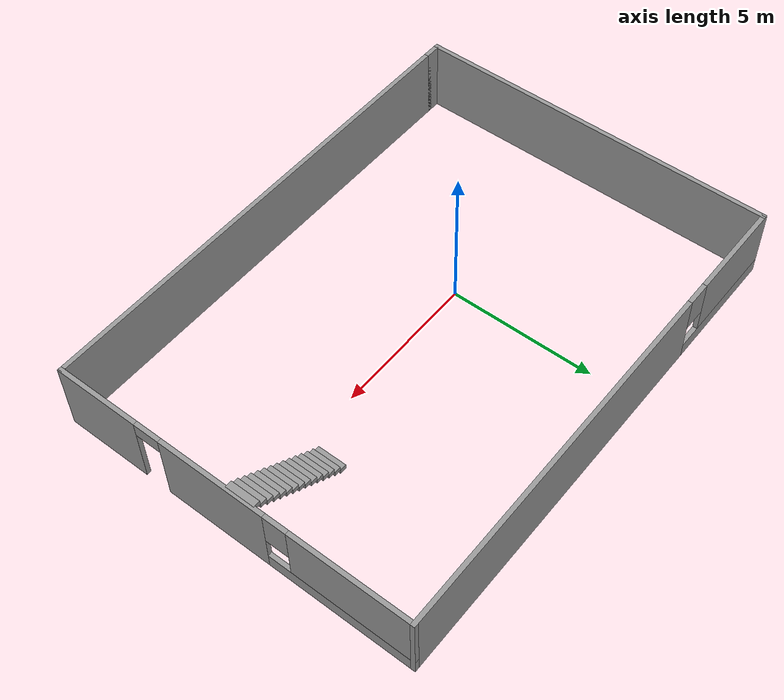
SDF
<?xml version='1.0'?>
<sdf version='1.7'>
  <model name='sim_world'>
    <pose>2.01947 0.477387 0 0 -0 0</pose>
    <link name='Stairs_1'>
      <visual name='Stairs_1_Visual_0'>
        <pose>5.01672 0.428993 0.083333 0 -0 1.5708</pose>
        <geometry>
          <box>
            <size>1 0.233333 0.166667</size>
          </box>
        </geometry>
        <material>
          <script>
            <uri>file://media/materials/scripts/gazebo.material</uri>
            <name>Gazebo/Grey</name>
          </script>
          <ambient>1 1 1 1</ambient>
        </material>
        <meta>
          <layer>0</layer>
        </meta>
      </visual>
      <collision name='Stairs_1_Collision_0'>
        <geometry>
          <box>
            <size>1 0.233333 0.166667</size>
          </box>
        </geometry>
        <pose>5.01672 0.428993 0.083333 0 -0 1.5708</pose>
      </collision>
      <visual name='Stairs_1_Visual_1'>
        <pose>5.25005 0.428993 0.25 0 -0 1.5708</pose>
        <geometry>
          <box>
            <size>1 0.233333 0.166667</size>
          </box>
        </geometry>
        <material>
          <script>
            <uri>file://media/materials/scripts/gazebo.material</uri>
            <name>Gazebo/Grey</name>
          </script>
          <ambient>1 1 1 1</ambient>
        </material>
        <meta>
          <layer>0</layer>
        </meta>
      </visual>
      <collision name='Stairs_1_Collision_1'>
        <geometry>
          <box>
            <size>1 0.233333 0.166667</size>
          </box>
        </geometry>
        <pose>5.25005 0.428993 0.25 0 -0 1.5708</pose>
      </collision>
      <visual name='Stairs_1_Visual_2'>
        <pose>5.48339 0.428993 0.416667 0 -0 1.5708</pose>
        <geometry>
          <box>
            <size>1 0.233333 0.166667</size>
          </box>
        </geometry>
        <material>
          <script>
            <uri>file://media/materials/scripts/gazebo.material</uri>
            <name>Gazebo/Grey</name>
          </script>
          <ambient>1 1 1 1</ambient>
        </material>
        <meta>
          <layer>0</layer>
        </meta>
      </visual>
      <collision name='Stairs_1_Collision_2'>
        <geometry>
          <box>
            <size>1 0.233333 0.166667</size>
          </box>
        </geometry>
        <pose>5.48339 0.428993 0.416667 0 -0 1.5708</pose>
      </collision>
      <visual name='Stairs_1_Visual_3'>
        <pose>5.71672 0.428993 0.583333 0 -0 1.5708</pose>
        <geometry>
          <box>
            <size>1 0.233333 0.166667</size>
          </box>
        </geometry>
        <material>
          <script>
            <uri>file://media/materials/scripts/gazebo.material</uri>
            <name>Gazebo/Grey</name>
          </script>
          <ambient>1 1 1 1</ambient>
        </material>
        <meta>
          <layer>0</layer>
        </meta>
      </visual>
      <collision name='Stairs_1_Collision_3'>
        <geometry>
          <box>
            <size>1 0.233333 0.166667</size>
          </box>
        </geometry>
        <pose>5.71672 0.428993 0.583333 0 -0 1.5708</pose>
      </collision>
      <visual name='Stairs_1_Visual_4'>
        <pose>5.95005 0.428993 0.75 0 -0 1.5708</pose>
        <geometry>
          <box>
            <size>1 0.233333 0.166667</size>
          </box>
        </geometry>
        <material>
          <script>
            <uri>file://media/materials/scripts/gazebo.material</uri>
            <name>Gazebo/Grey</name>
          </script>
          <ambient>1 1 1 1</ambient>
        </material>
        <meta>
          <layer>0</layer>
        </meta>
      </visual>
      <collision name='Stairs_1_Collision_4'>
        <geometry>
          <box>
            <size>1 0.233333 0.166667</size>
          </box>
        </geometry>
        <pose>5.95005 0.428993 0.75 0 -0 1.5708</pose>
      </collision>
      <visual name='Stairs_1_Visual_5'>
        <pose>6.18339 0.428993 0.916667 0 -0 1.5708</pose>
        <geometry>
          <box>
            <size>1 0.233333 0.166667</size>
          </box>
        </geometry>
        <material>
          <script>
            <uri>file://media/materials/scripts/gazebo.material</uri>
            <name>Gazebo/Grey</name>
          </script>
          <ambient>1 1 1 1</ambient>
        </material>
        <meta>
          <layer>0</layer>
        </meta>
      </visual>
      <collision name='Stairs_1_Collision_5'>
        <geometry>
          <box>
            <size>1 0.233333 0.166667</size>
          </box>
        </geometry>
        <pose>6.18339 0.428993 0.916667 0 -0 1.5708</pose>
      </collision>
      <visual name='Stairs_1_Visual_6'>
        <pose>6.41672 0.428993 1.08333 0 -0 1.5708</pose>
        <geometry>
          <box>
            <size>1 0.233333 0.166667</size>
          </box>
        </geometry>
        <material>
          <script>
            <uri>file://media/materials/scripts/gazebo.material</uri>
            <name>Gazebo/Grey</name>
          </script>
          <ambient>1 1 1 1</ambient>
        </material>
        <meta>
          <layer>0</layer>
        </meta>
      </visual>
      <collision name='Stairs_1_Collision_6'>
        <geometry>
          <box>
            <size>1 0.233333 0.166667</size>
          </box>
        </geometry>
        <pose>6.41672 0.428993 1.08333 0 -0 1.5708</pose>
      </collision>
      <visual name='Stairs_1_Visual_7'>
        <pose>6.65005 0.428993 1.25 0 -0 1.5708</pose>
        <geometry>
          <box>
            <size>1 0.233333 0.166667</size>
          </box>
        </geometry>
        <material>
          <script>
            <uri>file://media/materials/scripts/gazebo.material</uri>
            <name>Gazebo/Grey</name>
          </script>
          <ambient>1 1 1 1</ambient>
        </material>
        <meta>
          <layer>0</layer>
        </meta>
      </visual>
      <collision name='Stairs_1_Collision_7'>
        <geometry>
          <box>
            <size>1 0.233333 0.166667</size>
          </box>
        </geometry>
        <pose>6.65005 0.428993 1.25 0 -0 1.5708</pose>
      </collision>
      <visual name='Stairs_1_Visual_8'>
        <pose>6.88339 0.428993 1.41667 0 -0 1.5708</pose>
        <geometry>
          <box>
            <size>1 0.233333 0.166667</size>
          </box>
        </geometry>
        <material>
          <script>
            <uri>file://media/materials/scripts/gazebo.material</uri>
            <name>Gazebo/Grey</name>
          </script>
          <ambient>1 1 1 1</ambient>
        </material>
        <meta>
          <layer>0</layer>
        </meta>
      </visual>
      <collision name='Stairs_1_Collision_8'>
        <geometry>
          <box>
            <size>1 0.233333 0.166667</size>
          </box>
        </geometry>
        <pose>6.88339 0.428993 1.41667 0 -0 1.5708</pose>
      </collision>
      <visual name='Stairs_1_Visual_9'>
        <pose>7.11672 0.428993 1.58333 0 -0 1.5708</pose>
        <geometry>
          <box>
            <size>1 0.233333 0.166667</size>
          </box>
        </geometry>
        <material>
          <script>
            <uri>file://media/materials/scripts/gazebo.material</uri>
            <name>Gazebo/Grey</name>
          </script>
          <ambient>1 1 1 1</ambient>
        </material>
        <meta>
          <layer>0</layer>
        </meta>
      </visual>
      <collision name='Stairs_1_Collision_9'>
        <geometry>
          <box>
            <size>1 0.233333 0.166667</size>
          </box>
        </geometry>
        <pose>7.11672 0.428993 1.58333 0 -0 1.5708</pose>
      </collision>
      <visual name='Stairs_1_Visual_10'>
        <pose>7.35005 0.428993 1.75 0 -0 1.5708</pose>
        <geometry>
          <box>
            <size>1 0.233333 0.166667</size>
          </box>
        </geometry>
        <material>
          <script>
            <uri>file://media/materials/scripts/gazebo.material</uri>
            <name>Gazebo/Grey</name>
          </script>
          <ambient>1 1 1 1</ambient>
        </material>
        <meta>
          <layer>0</layer>
        </meta>
      </visual>
      <collision name='Stairs_1_Collision_10'>
        <geometry>
          <box>
            <size>1 0.233333 0.166667</size>
          </box>
        </geometry>
        <pose>7.35005 0.428993 1.75 0 -0 1.5708</pose>
      </collision>
      <visual name='Stairs_1_Visual_11'>
        <pose>7.58338 0.428993 1.91667 0 -0 1.5708</pose>
        <geometry>
          <box>
            <size>1 0.233333 0.166667</size>
          </box>
        </geometry>
        <material>
          <script>
            <uri>file://media/materials/scripts/gazebo.material</uri>
            <name>Gazebo/Grey</name>
          </script>
          <ambient>1 1 1 1</ambient>
        </material>
        <meta>
          <layer>0</layer>
        </meta>
      </visual>
      <collision name='Stairs_1_Collision_11'>
        <geometry>
          <box>
            <size>1 0.233333 0.166667</size>
          </box>
        </geometry>
        <pose>7.58338 0.428993 1.91667 0 -0 1.5708</pose>
      </collision>
      <visual name='Stairs_1_Visual_12'>
        <pose>7.81672 0.428993 2.08333 0 -0 1.5708</pose>
        <geometry>
          <box>
            <size>1 0.233333 0.166667</size>
          </box>
        </geometry>
        <material>
          <script>
            <uri>file://media/materials/scripts/gazebo.material</uri>
            <name>Gazebo/Grey</name>
          </script>
          <ambient>1 1 1 1</ambient>
        </material>
        <meta>
          <layer>0</layer>
        </meta>
      </visual>
      <collision name='Stairs_1_Collision_12'>
        <geometry>
          <box>
            <size>1 0.233333 0.166667</size>
          </box>
        </geometry>
        <pose>7.81672 0.428993 2.08333 0 -0 1.5708</pose>
      </collision>
      <visual name='Stairs_1_Visual_13'>
        <pose>8.05005 0.428993 2.25 0 -0 1.5708</pose>
        <geometry>
          <box>
            <size>1 0.233333 0.166667</size>
          </box>
        </geometry>
        <material>
          <script>
            <uri>file://media/materials/scripts/gazebo.material</uri>
            <name>Gazebo/Grey</name>
          </script>
          <ambient>1 1 1 1</ambient>
        </material>
        <meta>
          <layer>0</layer>
        </meta>
      </visual>
      <collision name='Stairs_1_Collision_13'>
        <geometry>
          <box>
            <size>1 0.233333 0.166667</size>
          </box>
        </geometry>
        <pose>8.05005 0.428993 2.25 0 -0 1.5708</pose>
      </collision>
      <visual name='Stairs_1_Visual_14'>
        <pose>8.28339 0.428993 2.41667 0 -0 1.5708</pose>
        <geometry>
          <box>
            <size>1 0.233333 0.166667</size>
          </box>
        </geometry>
        <material>
          <script>
            <uri>file://media/materials/scripts/gazebo.material</uri>
            <name>Gazebo/Grey</name>
          </script>
          <ambient>1 1 1 1</ambient>
        </material>
        <meta>
          <layer>0</layer>
        </meta>
      </visual>
      <collision name='Stairs_1_Collision_14'>
        <geometry>
          <box>
            <size>1 0.233333 0.166667</size>
          </box>
        </geometry>
        <pose>8.28339 0.428993 2.41667 0 -0 1.5708</pose>
      </collision>
    </link>
    <link name='Wall_5'>
      <collision name='Wall_5_Collision'>
        <geometry>
          <box>
            <size>16.5 0.15 2.5</size>
          </box>
        </geometry>
        <pose>0 0 1.25 0 -0 0</pose>
      </collision>
      <visual name='Wall_5_Visual'>
        <pose>0 0 1.25 0 -0 0</pose>
        <geometry>
          <box>
            <size>16.5 0.15 2.5</size>
          </box>
        </geometry>
        <material>
          <script>
            <uri>file://media/materials/scripts/gazebo.material</uri>
            <name>Gazebo/Grey</name>
          </script>
          <ambient>1 1 1 1</ambient>
        </material>
        <meta>
          <layer>0</layer>
        </meta>
      </visual>
      <pose>0.25 -6.175 0 0 -0 0</pose>
    </link>
    <link name='Wall_6'>
      <pose>8.425 -0 0 0 -0 1.5708</pose>
      <visual name='Wall_6_Visual_0'>
        <pose>-4.78268 0 1.25 0 -0 0</pose>
        <geometry>
          <box>
            <size>2.93465 0.15 2.5</size>
          </box>
        </geometry>
        <material>
          <script>
            <uri>file://media/materials/scripts/gazebo.material</uri>
            <name>Gazebo/Grey</name>
          </script>
          <ambient>1 1 1 1</ambient>
        </material>
        <meta>
          <layer>0</layer>
        </meta>
      </visual>
      <collision name='Wall_6_Collision_0'>
        <geometry>
          <box>
            <size>2.93465 0.15 2.5</size>
          </box>
        </geometry>
        <pose>-4.78268 0 1.25 0 -0 0</pose>
      </collision>
      <visual name='Wall_6_Visual_1'>
        <pose>-0.566035 0 1.25 0 -0 0</pose>
        <geometry>
          <box>
            <size>3.69863 0.15 2.5</size>
          </box>
        </geometry>
        <material>
          <script>
            <uri>file://media/materials/scripts/gazebo.material</uri>
            <name>Gazebo/Grey</name>
          </script>
          <ambient>1 1 1 1</ambient>
        </material>
        <meta>
          <layer>0</layer>
        </meta>
      </visual>
      <collision name='Wall_6_Collision_1'>
        <geometry>
          <box>
            <size>3.69863 0.15 2.5</size>
          </box>
        </geometry>
        <pose>-0.566035 0 1.25 0 -0 0</pose>
      </collision>
      <visual name='Wall_6_Visual_2'>
        <pose>3.76664 0 0.25 0 -0 0</pose>
        <geometry>
          <box>
            <size>4.96672 0.15 0.5</size>
          </box>
        </geometry>
        <material>
          <script>
            <uri>file://media/materials/scripts/gazebo.material</uri>
            <name>Gazebo/Grey</name>
          </script>
          <ambient>1 1 1 1</ambient>
        </material>
        <meta>
          <layer>0</layer>
        </meta>
      </visual>
      <collision name='Wall_6_Collision_2'>
        <geometry>
          <box>
            <size>4.96672 0.15 0.5</size>
          </box>
        </geometry>
        <pose>3.76664 0 0.25 0 -0 0</pose>
      </collision>
      <visual name='Wall_6_Visual_3'>
        <pose>4.16664 0 1.5 0 -0 0</pose>
        <geometry>
          <box>
            <size>4.16672 0.15 2</size>
          </box>
        </geometry>
        <material>
          <script>
            <uri>file://media/materials/scripts/gazebo.material</uri>
            <name>Gazebo/Grey</name>
          </script>
          <ambient>1 1 1 1</ambient>
        </material>
        <meta>
          <layer>0</layer>
        </meta>
      </visual>
      <collision name='Wall_6_Collision_3'>
        <geometry>
          <box>
            <size>4.16672 0.15 2</size>
          </box>
        </geometry>
        <pose>4.16664 0 1.5 0 -0 0</pose>
      </collision>
      <visual name='Wall_6_Visual_4'>
        <pose>1.68328 0 1.9 0 -0 0</pose>
        <geometry>
          <box>
            <size>0.8 0.15 1.2</size>
          </box>
        </geometry>
        <material>
          <script>
            <uri>file://media/materials/scripts/gazebo.material</uri>
            <name>Gazebo/Grey</name>
          </script>
          <ambient>1 1 1 1</ambient>
        </material>
        <meta>
          <layer>0</layer>
        </meta>
      </visual>
      <collision name='Wall_6_Collision_4'>
        <geometry>
          <box>
            <size>0.8 0.15 1.2</size>
          </box>
        </geometry>
        <pose>1.68328 0 1.9 0 -0 0</pose>
      </collision>
      <visual name='Wall_6_Visual_5'>
        <pose>-2.86535 0 2.25 0 -0 0</pose>
        <geometry>
          <box>
            <size>0.9 0.15 0.5</size>
          </box>
        </geometry>
        <material>
          <script>
            <uri>file://media/materials/scripts/gazebo.material</uri>
            <name>Gazebo/Grey</name>
          </script>
          <ambient>1 1 1 1</ambient>
        </material>
        <meta>
          <layer>0</layer>
        </meta>
      </visual>
      <collision name='Wall_6_Collision_5'>
        <geometry>
          <box>
            <size>0.9 0.15 0.5</size>
          </box>
        </geometry>
        <pose>-2.86535 0 2.25 0 -0 0</pose>
      </collision>
    </link>
    <link name='Wall_7'>
      <pose>-0 6.175 0 0 -0 3.14159</pose>
      <visual name='Wall_7_Visual_0'>
        <pose>-2.12595 0 1.25 0 -0 0</pose>
        <geometry>
          <box>
            <size>12.7481 0.15 2.5</size>
          </box>
        </geometry>
        <material>
          <script>
            <uri>file://media/materials/scripts/gazebo.material</uri>
            <name>Gazebo/Grey</name>
          </script>
          <ambient>1 1 1 1</ambient>
        </material>
        <meta>
          <layer>0</layer>
        </meta>
      </visual>
      <collision name='Wall_7_Collision_0'>
        <geometry>
          <box>
            <size>12.7481 0.15 2.5</size>
          </box>
        </geometry>
        <pose>-2.12595 0 1.25 0 -0 0</pose>
      </collision>
      <visual name='Wall_7_Visual_1'>
        <pose>6.37405 0 0.25 0 -0 0</pose>
        <geometry>
          <box>
            <size>4.2519 0.15 0.5</size>
          </box>
        </geometry>
        <material>
          <script>
            <uri>file://media/materials/scripts/gazebo.material</uri>
            <name>Gazebo/Grey</name>
          </script>
          <ambient>1 1 1 1</ambient>
        </material>
        <meta>
          <layer>0</layer>
        </meta>
      </visual>
      <collision name='Wall_7_Collision_1'>
        <geometry>
          <box>
            <size>4.2519 0.15 0.5</size>
          </box>
        </geometry>
        <pose>6.37405 0 0.25 0 -0 0</pose>
      </collision>
      <visual name='Wall_7_Visual_2'>
        <pose>6.77405 0 1.5 0 -0 0</pose>
        <geometry>
          <box>
            <size>3.4519 0.15 2</size>
          </box>
        </geometry>
        <material>
          <script>
            <uri>file://media/materials/scripts/gazebo.material</uri>
            <name>Gazebo/Grey</name>
          </script>
          <ambient>1 1 1 1</ambient>
        </material>
        <meta>
          <layer>0</layer>
        </meta>
      </visual>
      <collision name='Wall_7_Collision_2'>
        <geometry>
          <box>
            <size>3.4519 0.15 2</size>
          </box>
        </geometry>
        <pose>6.77405 0 1.5 0 -0 0</pose>
      </collision>
      <visual name='Wall_7_Visual_3'>
        <pose>4.6481 0 1.9 0 -0 0</pose>
        <geometry>
          <box>
            <size>0.8 0.15 1.2</size>
          </box>
        </geometry>
        <material>
          <script>
            <uri>file://media/materials/scripts/gazebo.material</uri>
            <name>Gazebo/Grey</name>
          </script>
          <ambient>1 1 1 1</ambient>
        </material>
        <meta>
          <layer>0</layer>
        </meta>
      </visual>
      <collision name='Wall_7_Collision_3'>
        <geometry>
          <box>
            <size>0.8 0.15 1.2</size>
          </box>
        </geometry>
        <pose>4.6481 0 1.9 0 -0 0</pose>
      </collision>
    </link>
    <link name='Wall_8'>
      <collision name='Wall_8_Collision'>
        <geometry>
          <box>
            <size>12.5 0.15 2.5</size>
          </box>
        </geometry>
        <pose>0 0 1.25 0 -0 0</pose>
      </collision>
      <visual name='Wall_8_Visual'>
        <pose>0 0 1.25 0 -0 0</pose>
        <geometry>
          <box>
            <size>12.5 0.15 2.5</size>
          </box>
        </geometry>
        <material>
          <script>
            <uri>file://media/materials/scripts/gazebo.material</uri>
            <name>Gazebo/Grey</name>
          </script>
          <ambient>1 1 1 1</ambient>
        </material>
        <meta>
          <layer>0</layer>
        </meta>
      </visual>
      <pose>-8.425 -0 0 0 -0 -1.5708</pose>
    </link>
    <link name='Wall_9'>
      <collision name='Wall_9_Collision'>
        <geometry>
          <box>
            <size>0.65 0.15 2.5</size>
          </box>
        </geometry>
        <pose>0 0 1.25 0 -0 0</pose>
      </collision>
      <visual name='Wall_9_Visual'>
        <pose>0 0 1.25 0 -0 0</pose>
        <geometry>
          <box>
            <size>0.65 0.15 2.5</size>
          </box>
        </geometry>
        <material>
          <script>
            <uri>file://media/materials/scripts/gazebo.material</uri>
            <name>Gazebo/Grey</name>
          </script>
          <ambient>1 1 1 1</ambient>
        </material>
        <meta>
          <layer>0</layer>
        </meta>
      </visual>
      <pose>-8.175 -6.175 0 0 -0 0</pose>
    </link>
    <static>1</static>
  </model>
</sdf>
